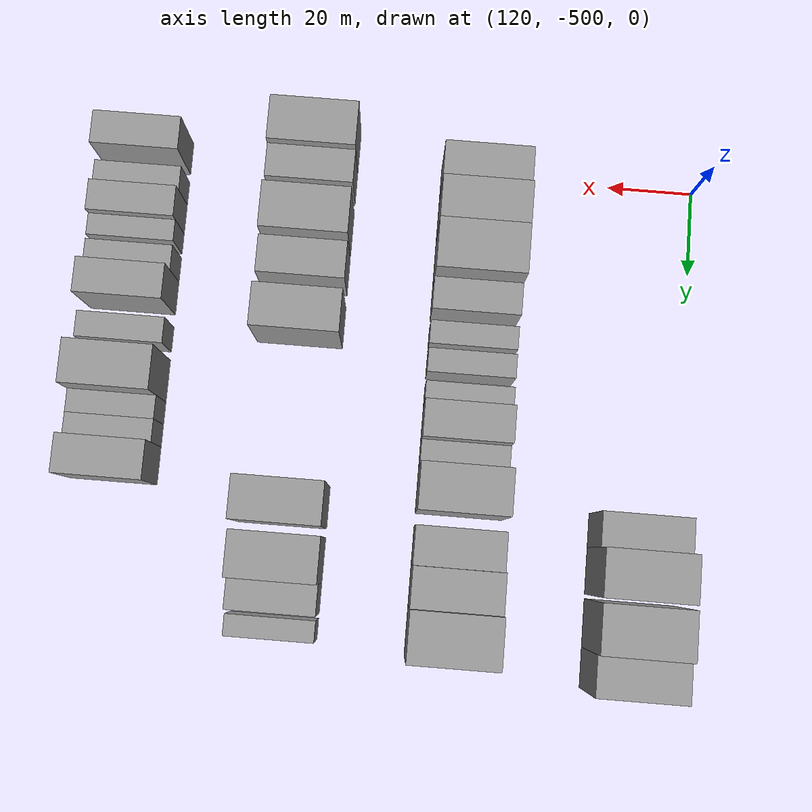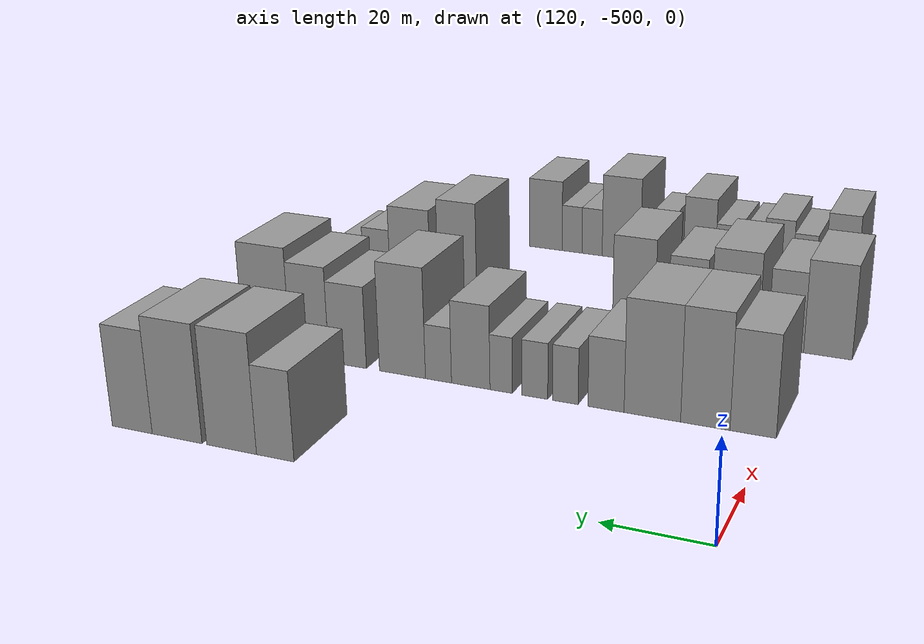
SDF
<sdf version="1.6">
 <world name="default">
  <model name="building_304">
   <static>1</static>
   <pose>130.0000 -418.1907 0 0.000000 0.000000 0.000000</pose>
   <link name="link">
    <pose>0 0 9.00 0 0 0</pose>
    <collision name="collision"><geometry><box><size>20.0000 7.7874 18.0000</size></box></geometry></collision>
    <visual name="visual">
     <cast_shadows>0</cast_shadows>
     <geometry><box><size>20.0000 7.7874 18.0000</size></box></geometry>
     <material>
      <script>
       <uri>model://grey_wall/materials/scripts</uri>
       <uri>model://grey_wall/materials/textures</uri>
       <name>vrc/grey_wall</name>
      </script>
     </material>
    </visual>
   </link>
  </model>
  <model name="building_305">
   <static>1</static>
   <pose>130.0000 -408.9998 0 0.000000 0.000000 0.000000</pose>
   <link name="link">
    <pose>0 0 12.00 0 0 0</pose>
    <collision name="collision"><geometry><box><size>20.0000 10.5945 24.0000</size></box></geometry></collision>
    <visual name="visual">
     <cast_shadows>0</cast_shadows>
     <geometry><box><size>20.0000 10.5945 24.0000</size></box></geometry>
     <material>
      <script>
       <uri>model://grey_wall/materials/scripts</uri>
       <uri>model://grey_wall/materials/textures</uri>
       <name>vrc/grey_wall</name>
      </script>
     </material>
    </visual>
   </link>
  </model>
  <model name="building_306">
   <static>1</static>
   <pose>130.0000 -397.2481 0 0.000000 0.000000 0.000000</pose>
   <link name="link">
    <pose>0 0 12.00 0 0 0</pose>
    <collision name="collision"><geometry><box><size>20.0000 10.9089 24.0000</size></box></geometry></collision>
    <visual name="visual">
     <cast_shadows>0</cast_shadows>
     <geometry><box><size>20.0000 10.9089 24.0000</size></box></geometry>
     <material>
      <script>
       <uri>model://grey_wall/materials/scripts</uri>
       <uri>model://grey_wall/materials/textures</uri>
       <name>vrc/grey_wall</name>
      </script>
     </material>
    </visual>
   </link>
  </model>
  <model name="building_307">
   <static>1</static>
   <pose>130.0000 -387.3245 0 0.000000 0.000000 0.000000</pose>
   <link name="link">
    <pose>0 0 10.50 0 0 0</pose>
    <collision name="collision"><geometry><box><size>20.0000 8.9382 21.0000</size></box></geometry></collision>
    <visual name="visual">
     <cast_shadows>0</cast_shadows>
     <geometry><box><size>20.0000 8.9382 21.0000</size></box></geometry>
     <material>
      <script>
       <uri>model://grey_wall/materials/scripts</uri>
       <uri>model://grey_wall/materials/textures</uri>
       <name>vrc/grey_wall</name>
      </script>
     </material>
    </visual>
   </link>
  </model>
  <model name="building_433">
   <static>1</static>
   <pose>170.0000 -496.7724 0 0.000000 0.000000 0.000000</pose>
   <link name="link">
    <pose>0 0 10.50 0 0 0</pose>
    <collision name="collision"><geometry><box><size>20.0000 8.8225 21.0000</size></box></geometry></collision>
    <visual name="visual">
     <cast_shadows>0</cast_shadows>
     <geometry><box><size>20.0000 8.8225 21.0000</size></box></geometry>
     <material>
      <script>
       <uri>model://grey_wall/materials/scripts</uri>
       <uri>model://grey_wall/materials/textures</uri>
       <name>vrc/grey_wall</name>
      </script>
     </material>
    </visual>
   </link>
  </model>
  <model name="building_434">
   <static>1</static>
   <pose>170.0000 -487.5609 0 0.000000 0.000000 0.000000</pose>
   <link name="link">
    <pose>0 0 12.00 0 0 0</pose>
    <collision name="collision"><geometry><box><size>20.0000 9.6005 24.0000</size></box></geometry></collision>
    <visual name="visual">
     <cast_shadows>0</cast_shadows>
     <geometry><box><size>20.0000 9.6005 24.0000</size></box></geometry>
     <material>
      <script>
       <uri>model://grey_wall/materials/scripts</uri>
       <uri>model://grey_wall/materials/textures</uri>
       <name>vrc/grey_wall</name>
      </script>
     </material>
    </visual>
   </link>
  </model>
  <model name="building_435">
   <static>1</static>
   <pose>170.0000 -477.1231 0 0.000000 0.000000 0.000000</pose>
   <link name="link">
    <pose>0 0 12.00 0 0 0</pose>
    <collision name="collision"><geometry><box><size>20.0000 11.2752 24.0000</size></box></geometry></collision>
    <visual name="visual">
     <cast_shadows>0</cast_shadows>
     <geometry><box><size>20.0000 11.2752 24.0000</size></box></geometry>
     <material>
      <script>
       <uri>model://grey_wall/materials/scripts</uri>
       <uri>model://grey_wall/materials/textures</uri>
       <name>vrc/grey_wall</name>
      </script>
     </material>
    </visual>
   </link>
  </model>
  <model name="building_436">
   <static>1</static>
   <pose>170.0000 -467.8001 0 0.000000 0.000000 0.000000</pose>
   <link name="link">
    <pose>0 0 7.50 0 0 0</pose>
    <collision name="collision"><geometry><box><size>20.0000 7.3707 15.0000</size></box></geometry></collision>
    <visual name="visual">
     <cast_shadows>0</cast_shadows>
     <geometry><box><size>20.0000 7.3707 15.0000</size></box></geometry>
     <material>
      <script>
       <uri>model://grey_wall/materials/scripts</uri>
       <uri>model://grey_wall/materials/textures</uri>
       <name>vrc/grey_wall</name>
      </script>
     </material>
    </visual>
   </link>
  </model>
  <model name="building_437">
   <static>1</static>
   <pose>170.0000 -459.4392 0 0.000000 0.000000 0.000000</pose>
   <link name="link">
    <pose>0 0 6.00 0 0 0</pose>
    <collision name="collision"><geometry><box><size>20.0000 5.3512 12.0000</size></box></geometry></collision>
    <visual name="visual">
     <cast_shadows>0</cast_shadows>
     <geometry><box><size>20.0000 5.3512 12.0000</size></box></geometry>
     <material>
      <script>
       <uri>model://grey_wall/materials/scripts</uri>
       <uri>model://grey_wall/materials/textures</uri>
       <name>vrc/grey_wall</name>
      </script>
     </material>
    </visual>
   </link>
  </model>
  <model name="building_438">
   <static>1</static>
   <pose>170.0000 -453.0164 0 0.000000 0.000000 0.000000</pose>
   <link name="link">
    <pose>0 0 6.00 0 0 0</pose>
    <collision name="collision"><geometry><box><size>20.0000 5.4944 12.0000</size></box></geometry></collision>
    <visual name="visual">
     <cast_shadows>0</cast_shadows>
     <geometry><box><size>20.0000 5.4944 12.0000</size></box></geometry>
     <material>
      <script>
       <uri>model://grey_wall/materials/scripts</uri>
       <uri>model://grey_wall/materials/textures</uri>
       <name>vrc/grey_wall</name>
      </script>
     </material>
    </visual>
   </link>
  </model>
  <model name="building_439">
   <static>1</static>
   <pose>170.0000 -445.8587 0 0.000000 0.000000 0.000000</pose>
   <link name="link">
    <pose>0 0 6.00 0 0 0</pose>
    <collision name="collision"><geometry><box><size>20.0000 4.8209 12.0000</size></box></geometry></collision>
    <visual name="visual">
     <cast_shadows>0</cast_shadows>
     <geometry><box><size>20.0000 4.8209 12.0000</size></box></geometry>
     <material>
      <script>
       <uri>model://grey_wall/materials/scripts</uri>
       <uri>model://grey_wall/materials/textures</uri>
       <name>vrc/grey_wall</name>
      </script>
     </material>
    </visual>
   </link>
  </model>
  <model name="building_440">
   <static>1</static>
   <pose>170.0000 -439.2414 0 0.000000 0.000000 0.000000</pose>
   <link name="link">
    <pose>0 0 9.00 0 0 0</pose>
    <collision name="collision"><geometry><box><size>20.0000 8.4138 18.0000</size></box></geometry></collision>
    <visual name="visual">
     <cast_shadows>0</cast_shadows>
     <geometry><box><size>20.0000 8.4138 18.0000</size></box></geometry>
     <material>
      <script>
       <uri>model://grey_wall/materials/scripts</uri>
       <uri>model://grey_wall/materials/textures</uri>
       <name>vrc/grey_wall</name>
      </script>
     </material>
    </visual>
   </link>
  </model>
  <model name="building_441">
   <static>1</static>
   <pose>170.0000 -432.1455 0 0.000000 0.000000 0.000000</pose>
   <link name="link">
    <pose>0 0 6.00 0 0 0</pose>
    <collision name="collision"><geometry><box><size>20.0000 5.7778 12.0000</size></box></geometry></collision>
    <visual name="visual">
     <cast_shadows>0</cast_shadows>
     <geometry><box><size>20.0000 5.7778 12.0000</size></box></geometry>
     <material>
      <script>
       <uri>model://grey_wall/materials/scripts</uri>
       <uri>model://grey_wall/materials/textures</uri>
       <name>vrc/grey_wall</name>
      </script>
     </material>
    </visual>
   </link>
  </model>
  <model name="building_442">
   <static>1</static>
   <pose>170.0000 -424.0539 0 0.000000 0.000000 0.000000</pose>
   <link name="link">
    <pose>0 0 12.00 0 0 0</pose>
    <collision name="collision"><geometry><box><size>20.0000 10.4054 24.0000</size></box></geometry></collision>
    <visual name="visual">
     <cast_shadows>0</cast_shadows>
     <geometry><box><size>20.0000 10.4054 24.0000</size></box></geometry>
     <material>
      <script>
       <uri>model://grey_wall/materials/scripts</uri>
       <uri>model://grey_wall/materials/textures</uri>
       <name>vrc/grey_wall</name>
      </script>
     </material>
    </visual>
   </link>
  </model>
  <model name="building_443">
   <static>1</static>
   <pose>170.0000 -411.5007 0 0.000000 0.000000 0.000000</pose>
   <link name="link">
    <pose>0 0 9.00 0 0 0</pose>
    <collision name="collision"><geometry><box><size>20.0000 8.7010 18.0000</size></box></geometry></collision>
    <visual name="visual">
     <cast_shadows>0</cast_shadows>
     <geometry><box><size>20.0000 8.7010 18.0000</size></box></geometry>
     <material>
      <script>
       <uri>model://grey_wall/materials/scripts</uri>
       <uri>model://grey_wall/materials/textures</uri>
       <name>vrc/grey_wall</name>
      </script>
     </material>
    </visual>
   </link>
  </model>
  <model name="building_444">
   <static>1</static>
   <pose>170.0000 -402.5948 0 0.000000 0.000000 0.000000</pose>
   <link name="link">
    <pose>0 0 10.50 0 0 0</pose>
    <collision name="collision"><geometry><box><size>20.0000 9.1106 21.0000</size></box></geometry></collision>
    <visual name="visual">
     <cast_shadows>0</cast_shadows>
     <geometry><box><size>20.0000 9.1106 21.0000</size></box></geometry>
     <material>
      <script>
       <uri>model://grey_wall/materials/scripts</uri>
       <uri>model://grey_wall/materials/textures</uri>
       <name>vrc/grey_wall</name>
      </script>
     </material>
    </visual>
   </link>
  </model>
  <model name="building_445">
   <static>1</static>
   <pose>170.0000 -392.3725 0 0.000000 0.000000 0.000000</pose>
   <link name="link">
    <pose>0 0 12.00 0 0 0</pose>
    <collision name="collision"><geometry><box><size>20.0000 11.3341 24.0000</size></box></geometry></collision>
    <visual name="visual">
     <cast_shadows>0</cast_shadows>
     <geometry><box><size>20.0000 11.3341 24.0000</size></box></geometry>
     <material>
      <script>
       <uri>model://grey_wall/materials/scripts</uri>
       <uri>model://grey_wall/materials/textures</uri>
       <name>vrc/grey_wall</name>
      </script>
     </material>
    </visual>
   </link>
  </model>
  <model name="building_566">
   <static>1</static>
   <pose>210.0000 -503.4214 0 0.000000 0.000000 0.000000</pose>
   <link name="link">
    <pose>0 0 10.50 0 0 0</pose>
    <collision name="collision"><geometry><box><size>20.0000 10.2068 21.0000</size></box></geometry></collision>
    <visual name="visual">
     <cast_shadows>0</cast_shadows>
     <geometry><box><size>20.0000 10.2068 21.0000</size></box></geometry>
     <material>
      <script>
       <uri>model://grey_wall/materials/scripts</uri>
       <uri>model://grey_wall/materials/textures</uri>
       <name>vrc/grey_wall</name>
      </script>
     </material>
    </visual>
   </link>
  </model>
  <model name="building_567">
   <static>1</static>
   <pose>210.0000 -494.4802 0 0.000000 0.000000 0.000000</pose>
   <link name="link">
    <pose>0 0 9.00 0 0 0</pose>
    <collision name="collision"><geometry><box><size>20.0000 7.6755 18.0000</size></box></geometry></collision>
    <visual name="visual">
     <cast_shadows>0</cast_shadows>
     <geometry><box><size>20.0000 7.6755 18.0000</size></box></geometry>
     <material>
      <script>
       <uri>model://grey_wall/materials/scripts</uri>
       <uri>model://grey_wall/materials/textures</uri>
       <name>vrc/grey_wall</name>
      </script>
     </material>
    </visual>
   </link>
  </model>
  <model name="building_568">
   <static>1</static>
   <pose>210.0000 -483.4020 0 0.000000 0.000000 0.000000</pose>
   <link name="link">
    <pose>0 0 10.50 0 0 0</pose>
    <collision name="collision"><geometry><box><size>20.0000 10.4811 21.0000</size></box></geometry></collision>
    <visual name="visual">
     <cast_shadows>0</cast_shadows>
     <geometry><box><size>20.0000 10.4811 21.0000</size></box></geometry>
     <material>
      <script>
       <uri>model://grey_wall/materials/scripts</uri>
       <uri>model://grey_wall/materials/textures</uri>
       <name>vrc/grey_wall</name>
      </script>
     </material>
    </visual>
   </link>
  </model>
  <model name="building_569">
   <static>1</static>
   <pose>210.0000 -472.8908 0 0.000000 0.000000 0.000000</pose>
   <link name="link">
    <pose>0 0 9.00 0 0 0</pose>
    <collision name="collision"><geometry><box><size>20.0000 8.5411 18.0000</size></box></geometry></collision>
    <visual name="visual">
     <cast_shadows>0</cast_shadows>
     <geometry><box><size>20.0000 8.5411 18.0000</size></box></geometry>
     <material>
      <script>
       <uri>model://grey_wall/materials/scripts</uri>
       <uri>model://grey_wall/materials/textures</uri>
       <name>vrc/grey_wall</name>
      </script>
     </material>
    </visual>
   </link>
  </model>
  <model name="building_570">
   <static>1</static>
   <pose>210.0000 -460.7483 0 0.000000 0.000000 0.000000</pose>
   <link name="link">
    <pose>0 0 10.50 0 0 0</pose>
    <collision name="collision"><geometry><box><size>20.0000 9.7439 21.0000</size></box></geometry></collision>
    <visual name="visual">
     <cast_shadows>0</cast_shadows>
     <geometry><box><size>20.0000 9.7439 21.0000</size></box></geometry>
     <material>
      <script>
       <uri>model://grey_wall/materials/scripts</uri>
       <uri>model://grey_wall/materials/textures</uri>
       <name>vrc/grey_wall</name>
      </script>
     </material>
    </visual>
   </link>
  </model>
  <model name="building_571">
   <static>1</static>
   <pose>210.0000 -418.4500 0 0.000000 0.000000 0.000000</pose>
   <link name="link">
    <pose>0 0 12.00 0 0 0</pose>
    <collision name="collision"><geometry><box><size>20.0000 9.6176 24.0000</size></box></geometry></collision>
    <visual name="visual">
     <cast_shadows>0</cast_shadows>
     <geometry><box><size>20.0000 9.6176 24.0000</size></box></geometry>
     <material>
      <script>
       <uri>model://grey_wall/materials/scripts</uri>
       <uri>model://grey_wall/materials/textures</uri>
       <name>vrc/grey_wall</name>
      </script>
     </material>
    </visual>
   </link>
  </model>
  <model name="building_572">
   <static>1</static>
   <pose>210.0000 -406.4962 0 0.000000 0.000000 0.000000</pose>
   <link name="link">
    <pose>0 0 10.50 0 0 0</pose>
    <collision name="collision"><geometry><box><size>20.0000 10.2900 21.0000</size></box></geometry></collision>
    <visual name="visual">
     <cast_shadows>0</cast_shadows>
     <geometry><box><size>20.0000 10.2900 21.0000</size></box></geometry>
     <material>
      <script>
       <uri>model://grey_wall/materials/scripts</uri>
       <uri>model://grey_wall/materials/textures</uri>
       <name>vrc/grey_wall</name>
      </script>
     </material>
    </visual>
   </link>
  </model>
  <model name="building_573">
   <static>1</static>
   <pose>210.0000 -397.8858 0 0.000000 0.000000 0.000000</pose>
   <link name="link">
    <pose>0 0 7.50 0 0 0</pose>
    <collision name="collision"><geometry><box><size>20.0000 6.9307 15.0000</size></box></geometry></collision>
    <visual name="visual">
     <cast_shadows>0</cast_shadows>
     <geometry><box><size>20.0000 6.9307 15.0000</size></box></geometry>
     <material>
      <script>
       <uri>model://grey_wall/materials/scripts</uri>
       <uri>model://grey_wall/materials/textures</uri>
       <name>vrc/grey_wall</name>
      </script>
     </material>
    </visual>
   </link>
  </model>
  <model name="building_574">
   <static>1</static>
   <pose>210.0000 -391.0123 0 0.000000 0.000000 0.000000</pose>
   <link name="link">
    <pose>0 0 6.00 0 0 0</pose>
    <collision name="collision"><geometry><box><size>20.0000 4.8164 12.0000</size></box></geometry></collision>
    <visual name="visual">
     <cast_shadows>0</cast_shadows>
     <geometry><box><size>20.0000 4.8164 12.0000</size></box></geometry>
     <material>
      <script>
       <uri>model://grey_wall/materials/scripts</uri>
       <uri>model://grey_wall/materials/textures</uri>
       <name>vrc/grey_wall</name>
      </script>
     </material>
    </visual>
   </link>
  </model>
  <model name="building_700">
   <static>1</static>
   <pose>250.0000 -499.0235 0 0.000000 0.000000 0.000000</pose>
   <link name="link">
    <pose>0 0 9.00 0 0 0</pose>
    <collision name="collision"><geometry><box><size>20.0000 7.6092 18.0000</size></box></geometry></collision>
    <visual name="visual">
     <cast_shadows>0</cast_shadows>
     <geometry><box><size>20.0000 7.6092 18.0000</size></box></geometry>
     <material>
      <script>
       <uri>model://grey_wall/materials/scripts</uri>
       <uri>model://grey_wall/materials/textures</uri>
       <name>vrc/grey_wall</name>
      </script>
     </material>
    </visual>
   </link>
  </model>
  <model name="building_701">
   <static>1</static>
   <pose>250.0000 -490.4245 0 0.000000 0.000000 0.000000</pose>
   <link name="link">
    <pose>0 0 6.00 0 0 0</pose>
    <collision name="collision"><geometry><box><size>20.0000 5.5889 12.0000</size></box></geometry></collision>
    <visual name="visual">
     <cast_shadows>0</cast_shadows>
     <geometry><box><size>20.0000 5.5889 12.0000</size></box></geometry>
     <material>
      <script>
       <uri>model://grey_wall/materials/scripts</uri>
       <uri>model://grey_wall/materials/textures</uri>
       <name>vrc/grey_wall</name>
      </script>
     </material>
    </visual>
   </link>
  </model>
  <model name="building_702">
   <static>1</static>
   <pose>250.0000 -484.0871 0 0.000000 0.000000 0.000000</pose>
   <link name="link">
    <pose>0 0 7.50 0 0 0</pose>
    <collision name="collision"><geometry><box><size>20.0000 7.0858 15.0000</size></box></geometry></collision>
    <visual name="visual">
     <cast_shadows>0</cast_shadows>
     <geometry><box><size>20.0000 7.0858 15.0000</size></box></geometry>
     <material>
      <script>
       <uri>model://grey_wall/materials/scripts</uri>
       <uri>model://grey_wall/materials/textures</uri>
       <name>vrc/grey_wall</name>
      </script>
     </material>
    </visual>
   </link>
  </model>
  <model name="building_703">
   <static>1</static>
   <pose>250.0000 -478.0457 0 0.000000 0.000000 0.000000</pose>
   <link name="link">
    <pose>0 0 6.00 0 0 0</pose>
    <collision name="collision"><geometry><box><size>20.0000 4.9969 12.0000</size></box></geometry></collision>
    <visual name="visual">
     <cast_shadows>0</cast_shadows>
     <geometry><box><size>20.0000 4.9969 12.0000</size></box></geometry>
     <material>
      <script>
       <uri>model://grey_wall/materials/scripts</uri>
       <uri>model://grey_wall/materials/textures</uri>
       <name>vrc/grey_wall</name>
      </script>
     </material>
    </visual>
   </link>
  </model>
  <model name="building_704">
   <static>1</static>
   <pose>250.0000 -471.6507 0 0.000000 0.000000 0.000000</pose>
   <link name="link">
    <pose>0 0 6.00 0 0 0</pose>
    <collision name="collision"><geometry><box><size>20.0000 5.7932 12.0000</size></box></geometry></collision>
    <visual name="visual">
     <cast_shadows>0</cast_shadows>
     <geometry><box><size>20.0000 5.7932 12.0000</size></box></geometry>
     <material>
      <script>
       <uri>model://grey_wall/materials/scripts</uri>
       <uri>model://grey_wall/materials/textures</uri>
       <name>vrc/grey_wall</name>
      </script>
     </material>
    </visual>
   </link>
  </model>
  <model name="building_705">
   <static>1</static>
   <pose>250.0000 -464.7656 0 0.000000 0.000000 0.000000</pose>
   <link name="link">
    <pose>0 0 9.00 0 0 0</pose>
    <collision name="collision"><geometry><box><size>20.0000 7.9770 18.0000</size></box></geometry></collision>
    <visual name="visual">
     <cast_shadows>0</cast_shadows>
     <geometry><box><size>20.0000 7.9770 18.0000</size></box></geometry>
     <material>
      <script>
       <uri>model://grey_wall/materials/scripts</uri>
       <uri>model://grey_wall/materials/textures</uri>
       <name>vrc/grey_wall</name>
      </script>
     </material>
    </visual>
   </link>
  </model>
  <model name="building_706">
   <static>1</static>
   <pose>250.0000 -454.8258 0 0.000000 0.000000 0.000000</pose>
   <link name="link">
    <pose>0 0 6.00 0 0 0</pose>
    <collision name="collision"><geometry><box><size>20.0000 5.9027 12.0000</size></box></geometry></collision>
    <visual name="visual">
     <cast_shadows>0</cast_shadows>
     <geometry><box><size>20.0000 5.9027 12.0000</size></box></geometry>
     <material>
      <script>
       <uri>model://grey_wall/materials/scripts</uri>
       <uri>model://grey_wall/materials/textures</uri>
       <name>vrc/grey_wall</name>
      </script>
     </material>
    </visual>
   </link>
  </model>
  <model name="building_707">
   <static>1</static>
   <pose>250.0000 -444.9150 0 0.000000 0.000000 0.000000</pose>
   <link name="link">
    <pose>0 0 10.50 0 0 0</pose>
    <collision name="collision"><geometry><box><size>20.0000 9.9189 21.0000</size></box></geometry></collision>
    <visual name="visual">
     <cast_shadows>0</cast_shadows>
     <geometry><box><size>20.0000 9.9189 21.0000</size></box></geometry>
     <material>
      <script>
       <uri>model://grey_wall/materials/scripts</uri>
       <uri>model://grey_wall/materials/textures</uri>
       <name>vrc/grey_wall</name>
      </script>
     </material>
    </visual>
   </link>
  </model>
  <model name="building_708">
   <static>1</static>
   <pose>250.0000 -437.2841 0 0.000000 0.000000 0.000000</pose>
   <link name="link">
    <pose>0 0 6.00 0 0 0</pose>
    <collision name="collision"><geometry><box><size>20.0000 5.3428 12.0000</size></box></geometry></collision>
    <visual name="visual">
     <cast_shadows>0</cast_shadows>
     <geometry><box><size>20.0000 5.3428 12.0000</size></box></geometry>
     <material>
      <script>
       <uri>model://grey_wall/materials/scripts</uri>
       <uri>model://grey_wall/materials/textures</uri>
       <name>vrc/grey_wall</name>
      </script>
     </material>
    </visual>
   </link>
  </model>
  <model name="building_709">
   <static>1</static>
   <pose>250.0000 -431.9910 0 0.000000 0.000000 0.000000</pose>
   <link name="link">
    <pose>0 0 6.00 0 0 0</pose>
    <collision name="collision"><geometry><box><size>20.0000 5.2434 12.0000</size></box></geometry></collision>
    <visual name="visual">
     <cast_shadows>0</cast_shadows>
     <geometry><box><size>20.0000 5.2434 12.0000</size></box></geometry>
     <material>
      <script>
       <uri>model://grey_wall/materials/scripts</uri>
       <uri>model://grey_wall/materials/textures</uri>
       <name>vrc/grey_wall</name>
      </script>
     </material>
    </visual>
   </link>
  </model>
  <model name="building_710">
   <static>1</static>
   <pose>250.0000 -424.9639 0 0.000000 0.000000 0.000000</pose>
   <link name="link">
    <pose>0 0 9.00 0 0 0</pose>
    <collision name="collision"><geometry><box><size>20.0000 8.8109 18.0000</size></box></geometry></collision>
    <visual name="visual">
     <cast_shadows>0</cast_shadows>
     <geometry><box><size>20.0000 8.8109 18.0000</size></box></geometry>
     <material>
      <script>
       <uri>model://grey_wall/materials/scripts</uri>
       <uri>model://grey_wall/materials/textures</uri>
       <name>vrc/grey_wall</name>
      </script>
     </material>
    </visual>
   </link>
  </model>
 </world>
</sdf>
